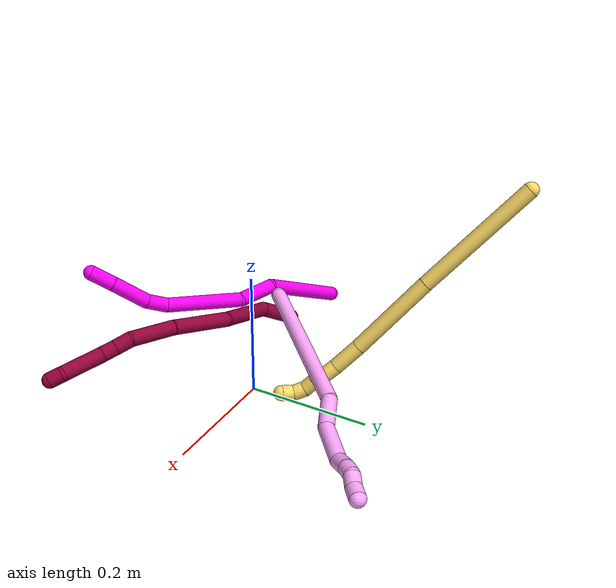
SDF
<sdf version="1.7">
 <world name="default">
  <model name="4">
   <static>0</static>
   <link name="4">
    <collision name="collision-cylinder-e_1_1_4">
     <pose>0.012175 0.077484 0.117169 -0.584275 0.086454 -0.026015</pose>
     <geometry><cylinder><radius>0.0125</radius><length>0.281997</length></cylinder></geometry>
     <surface>
      <friction><ode><mu>1.16</mu><mu2>1.16</mu2><slip1>0</slip1><slip2>0</slip2></ode></friction>
      <contact><ode><kp>1e+06</kp><kd>1</kd><max_vel>0</max_vel><min_depth>0.001</min_depth></ode></contact>
     </surface>
    </collision>
    <visual name="visual-cylinder-e_1_1_4">
     <pose>0.012175 0.077484 0.117169 -0.584275 0.086454 -0.026015</pose>
     <geometry><cylinder><radius>0.0125</radius><length>0.281997</length></cylinder></geometry>
     <material><ambient>1 0.65098 0.996078 1</ambient></material>
    </visual>
    <collision name="collision-cylinder-e_2_4_5">
     <pose>0.018824 0.163188 0.261098 -0.29807 -0.194887 0.029353</pose>
     <geometry><cylinder><radius>0.0125</radius><length>0.057068</length></cylinder></geometry>
     <surface>
      <friction><ode><mu>1.16</mu><mu2>1.16</mu2><slip1>0</slip1><slip2>0</slip2></ode></friction>
      <contact><ode><kp>1e+06</kp><kd>1</kd><max_vel>0</max_vel><min_depth>0.001</min_depth></ode></contact>
     </surface>
    </collision>
    <visual name="visual-cylinder-e_2_4_5">
     <pose>0.018824 0.163188 0.261098 -0.29807 -0.194887 0.029353</pose>
     <geometry><cylinder><radius>0.0125</radius><length>0.057068</length></cylinder></geometry>
     <material><ambient>1 0.65098 0.996078 1</ambient></material>
    </visual>
    <collision name="collision-cylinder-e_3_5_6">
     <pose>0.014566 0.18964 0.317271 -0.554851 0.036622 -0.01043</pose>
     <geometry><cylinder><radius>0.0125</radius><length>0.069256</length></cylinder></geometry>
     <surface>
      <friction><ode><mu>1.16</mu><mu2>1.16</mu2><slip1>0</slip1><slip2>0</slip2></ode></friction>
      <contact><ode><kp>1e+06</kp><kd>1</kd><max_vel>0</max_vel><min_depth>0.001</min_depth></ode></contact>
     </surface>
    </collision>
    <visual name="visual-cylinder-e_3_5_6">
     <pose>0.014566 0.18964 0.317271 -0.554851 0.036622 -0.01043</pose>
     <geometry><cylinder><radius>0.0125</radius><length>0.069256</length></cylinder></geometry>
     <material><ambient>1 0.65098 0.996078 1</ambient></material>
    </visual>
    <collision name="collision-cylinder-e_4_6_7">
     <pose>0.015534 0.218707 0.354358 -0.95465 -0.022546 0.011661</pose>
     <geometry><cylinder><radius>0.0125</radius><length>0.026564</length></cylinder></geometry>
     <surface>
      <friction><ode><mu>1.16</mu><mu2>1.16</mu2><slip1>0</slip1><slip2>0</slip2></ode></friction>
      <contact><ode><kp>1e+06</kp><kd>1</kd><max_vel>0</max_vel><min_depth>0.001</min_depth></ode></contact>
     </surface>
    </collision>
    <visual name="visual-cylinder-e_4_6_7">
     <pose>0.015534 0.218707 0.354358 -0.95465 -0.022546 0.011661</pose>
     <geometry><cylinder><radius>0.0125</radius><length>0.026564</length></cylinder></geometry>
     <material><ambient>1 0.65098 0.996078 1</ambient></material>
    </visual>
    <collision name="collision-cylinder-e_5_7_8">
     <pose>0.014797 0.237549 0.369448 -0.823569 -0.040056 0.017496</pose>
     <geometry><cylinder><radius>0.0125</radius><length>0.021842</length></cylinder></geometry>
     <surface>
      <friction><ode><mu>1.16</mu><mu2>1.16</mu2><slip1>0</slip1><slip2>0</slip2></ode></friction>
      <contact><ode><kp>1e+06</kp><kd>1</kd><max_vel>0</max_vel><min_depth>0.001</min_depth></ode></contact>
     </surface>
    </collision>
    <visual name="visual-cylinder-e_5_7_8">
     <pose>0.014797 0.237549 0.369448 -0.823569 -0.040056 0.017496</pose>
     <geometry><cylinder><radius>0.0125</radius><length>0.021842</length></cylinder></geometry>
     <material><ambient>1 0.65098 0.996078 1</ambient></material>
    </visual>
    <collision name="collision-cylinder-e_6_8_9">
     <pose>0.014487 0.249034 0.386634 -0.34213 0.012281 -0.002122</pose>
     <geometry><cylinder><radius>0.0125</radius><length>0.020745</length></cylinder></geometry>
     <surface>
      <friction><ode><mu>1.16</mu><mu2>1.16</mu2><slip1>0</slip1><slip2>0</slip2></ode></friction>
      <contact><ode><kp>1e+06</kp><kd>1</kd><max_vel>0</max_vel><min_depth>0.001</min_depth></ode></contact>
     </surface>
    </collision>
    <visual name="visual-cylinder-e_6_8_9">
     <pose>0.014487 0.249034 0.386634 -0.34213 0.012281 -0.002122</pose>
     <geometry><cylinder><radius>0.0125</radius><length>0.020745</length></cylinder></geometry>
     <material><ambient>1 0.65098 0.996078 1</ambient></material>
    </visual>
    <collision name="collision-cylinder-e_7_9_2">
     <pose>0.014141 0.258932 0.405648 -0.606974 -0.042121 0.013192</pose>
     <geometry><cylinder><radius>0.0125</radius><length>0.022528</length></cylinder></geometry>
     <surface>
      <friction><ode><mu>1.16</mu><mu2>1.16</mu2><slip1>0</slip1><slip2>0</slip2></ode></friction>
      <contact><ode><kp>1e+06</kp><kd>1</kd><max_vel>0</max_vel><min_depth>0.001</min_depth></ode></contact>
     </surface>
    </collision>
    <visual name="visual-cylinder-e_7_9_2">
     <pose>0.014141 0.258932 0.405648 -0.606974 -0.042121 0.013192</pose>
     <geometry><cylinder><radius>0.0125</radius><length>0.022528</length></cylinder></geometry>
     <material><ambient>1 0.65098 0.996078 1</ambient></material>
    </visual>
    <collision name="collision-sphere-2">
     <pose>0.013666 0.265351 0.414892 0 -0 0</pose>
     <geometry><sphere><radius>0.0125</radius></sphere></geometry>
     <surface>
      <friction><ode><mu>1.16</mu><mu2>1.16</mu2><slip1>0</slip1><slip2>0</slip2></ode></friction>
      <contact><ode><kp>1e+06</kp><kd>1</kd><max_vel>0</max_vel><min_depth>0.001</min_depth></ode></contact>
     </surface>
    </collision>
    <visual name="visual-sphere-2">
     <pose>0.013666 0.265351 0.414892 0 -0 0</pose>
     <geometry><sphere><radius>0.0125</radius></sphere></geometry>
     <material><ambient>1 0.65098 0.996078 1</ambient></material>
    </visual>
    <collision name="collision-sphere-9">
     <pose>0.014615 0.252513 0.396405 0 -0 0</pose>
     <geometry><sphere><radius>0.0125</radius></sphere></geometry>
     <surface>
      <friction><ode><mu>1.16</mu><mu2>1.16</mu2><slip1>0</slip1><slip2>0</slip2></ode></friction>
      <contact><ode><kp>1e+06</kp><kd>1</kd><max_vel>0</max_vel><min_depth>0.001</min_depth></ode></contact>
     </surface>
    </collision>
    <visual name="visual-sphere-9">
     <pose>0.014615 0.252513 0.396405 0 -0 0</pose>
     <geometry><sphere><radius>0.0125</radius></sphere></geometry>
     <material><ambient>1 0.65098 0.996078 1</ambient></material>
    </visual>
    <collision name="collision-sphere-4">
     <pose>0.024349 0.154967 0.234339 0 -0 0</pose>
     <geometry><sphere><radius>0.0125</radius></sphere></geometry>
     <surface>
      <friction><ode><mu>1.16</mu><mu2>1.16</mu2><slip1>0</slip1><slip2>0</slip2></ode></friction>
      <contact><ode><kp>1e+06</kp><kd>1</kd><max_vel>0</max_vel><min_depth>0.001</min_depth></ode></contact>
     </surface>
    </collision>
    <visual name="visual-sphere-4">
     <pose>0.024349 0.154967 0.234339 0 -0 0</pose>
     <geometry><sphere><radius>0.0125</radius></sphere></geometry>
     <material><ambient>1 0.65098 0.996078 1</ambient></material>
    </visual>
    <collision name="collision-sphere-1">
     <geometry><sphere><radius>0.0125</radius></sphere></geometry>
     <surface>
      <friction><ode><mu>1.16</mu><mu2>1.16</mu2><slip1>0</slip1><slip2>0</slip2></ode></friction>
      <contact><ode><kp>1e+06</kp><kd>1</kd><max_vel>0</max_vel><min_depth>0.001</min_depth></ode></contact>
     </surface>
    </collision>
    <visual name="visual-sphere-1">
     <geometry><sphere><radius>0.0125</radius></sphere></geometry>
     <material><ambient>1 0.65098 0.996078 1</ambient></material>
    </visual>
    <collision name="collision-sphere-8">
     <pose>0.01436 0.245554 0.376864 0 -0 0</pose>
     <geometry><sphere><radius>0.0125</radius></sphere></geometry>
     <surface>
      <friction><ode><mu>1.16</mu><mu2>1.16</mu2><slip1>0</slip1><slip2>0</slip2></ode></friction>
      <contact><ode><kp>1e+06</kp><kd>1</kd><max_vel>0</max_vel><min_depth>0.001</min_depth></ode></contact>
     </surface>
    </collision>
    <visual name="visual-sphere-8">
     <pose>0.01436 0.245554 0.376864 0 -0 0</pose>
     <geometry><sphere><radius>0.0125</radius></sphere></geometry>
     <material><ambient>1 0.65098 0.996078 1</ambient></material>
    </visual>
    <collision name="collision-sphere-5">
     <pose>0.013298 0.171409 0.287858 0 -0 0</pose>
     <geometry><sphere><radius>0.0125</radius></sphere></geometry>
     <surface>
      <friction><ode><mu>1.16</mu><mu2>1.16</mu2><slip1>0</slip1><slip2>0</slip2></ode></friction>
      <contact><ode><kp>1e+06</kp><kd>1</kd><max_vel>0</max_vel><min_depth>0.001</min_depth></ode></contact>
     </surface>
    </collision>
    <visual name="visual-sphere-5">
     <pose>0.013298 0.171409 0.287858 0 -0 0</pose>
     <geometry><sphere><radius>0.0125</radius></sphere></geometry>
     <material><ambient>1 0.65098 0.996078 1</ambient></material>
    </visual>
    <collision name="collision-sphere-6">
     <pose>0.015834 0.20787 0.346684 0 -0 0</pose>
     <geometry><sphere><radius>0.0125</radius></sphere></geometry>
     <surface>
      <friction><ode><mu>1.16</mu><mu2>1.16</mu2><slip1>0</slip1><slip2>0</slip2></ode></friction>
      <contact><ode><kp>1e+06</kp><kd>1</kd><max_vel>0</max_vel><min_depth>0.001</min_depth></ode></contact>
     </surface>
    </collision>
    <visual name="visual-sphere-6">
     <pose>0.015834 0.20787 0.346684 0 -0 0</pose>
     <geometry><sphere><radius>0.0125</radius></sphere></geometry>
     <material><ambient>1 0.65098 0.996078 1</ambient></material>
    </visual>
    <collision name="collision-sphere-7">
     <pose>0.015235 0.229544 0.362031 0 -0 0</pose>
     <geometry><sphere><radius>0.0125</radius></sphere></geometry>
     <surface>
      <friction><ode><mu>1.16</mu><mu2>1.16</mu2><slip1>0</slip1><slip2>0</slip2></ode></friction>
      <contact><ode><kp>1e+06</kp><kd>1</kd><max_vel>0</max_vel><min_depth>0.001</min_depth></ode></contact>
     </surface>
    </collision>
    <visual name="visual-sphere-7">
     <pose>0.015235 0.229544 0.362031 0 -0 0</pose>
     <geometry><sphere><radius>0.0125</radius></sphere></geometry>
     <material><ambient>1 0.65098 0.996078 1</ambient></material>
    </visual>
    <inertial>
     <pose>0.013742 0.132589 0.209113 0 -0 0</pose>
     <mass>0.5</mass>
     <inertia>
      <ixx>0.00188</ixx>
      <ixy>0</ixy>
      <ixz>0</ixz>
      <iyy>0.00159</iyy>
      <iyz>0</iyz>
      <izz>-0.001186</izz>
     </inertia>
    </inertial>
   </link>
   <pose>-0.162717 -0.046043 0.083964 2.2372 0.529505 2.33234</pose>
  </model>
  <model name="5">
   <static>0</static>
   <link name="5">
    <collision name="collision-cylinder-e_1_1_4">
     <pose>0.018145 0.022949 -0.098462 -2.91261 0.177583 -1.31757</pose>
     <geometry><cylinder><radius>0.0125</radius><length>0.205434</length></cylinder></geometry>
     <surface>
      <friction><ode><mu>1.16</mu><mu2>1.16</mu2><slip1>0</slip1><slip2>0</slip2></ode></friction>
      <contact><ode><kp>1e+06</kp><kd>1</kd><max_vel>0</max_vel><min_depth>0.001</min_depth></ode></contact>
     </surface>
    </collision>
    <visual name="visual-cylinder-e_1_1_4">
     <pose>0.018145 0.022949 -0.098462 -2.91261 0.177583 -1.31757</pose>
     <geometry><cylinder><radius>0.0125</radius><length>0.205434</length></cylinder></geometry>
     <material><ambient>1 0.858824 0.4 1</ambient></material>
    </visual>
    <collision name="collision-cylinder-e_2_4_5">
     <pose>0.04926 0.06399 -0.265554 -2.88383 0.180747 -1.22043</pose>
     <geometry><cylinder><radius>0.0125</radius><length>0.144299</length></cylinder></geometry>
     <surface>
      <friction><ode><mu>1.16</mu><mu2>1.16</mu2><slip1>0</slip1><slip2>0</slip2></ode></friction>
      <contact><ode><kp>1e+06</kp><kd>1</kd><max_vel>0</max_vel><min_depth>0.001</min_depth></ode></contact>
     </surface>
    </collision>
    <visual name="visual-cylinder-e_2_4_5">
     <pose>0.04926 0.06399 -0.265554 -2.88383 0.180747 -1.22043</pose>
     <geometry><cylinder><radius>0.0125</radius><length>0.144299</length></cylinder></geometry>
     <material><ambient>1 0.858824 0.4 1</ambient></material>
    </visual>
    <collision name="collision-cylinder-e_3_5_6">
     <pose>0.066962 0.086713 -0.357396 -2.94473 0.197327 -1.57319</pose>
     <geometry><cylinder><radius>0.0125</radius><length>0.048277</length></cylinder></geometry>
     <surface>
      <friction><ode><mu>1.16</mu><mu2>1.16</mu2><slip1>0</slip1><slip2>0</slip2></ode></friction>
      <contact><ode><kp>1e+06</kp><kd>1</kd><max_vel>0</max_vel><min_depth>0.001</min_depth></ode></contact>
     </surface>
    </collision>
    <visual name="visual-cylinder-e_3_5_6">
     <pose>0.066962 0.086713 -0.357396 -2.94473 0.197327 -1.57319</pose>
     <geometry><cylinder><radius>0.0125</radius><length>0.048277</length></cylinder></geometry>
     <material><ambient>1 0.858824 0.4 1</ambient></material>
    </visual>
    <collision name="collision-cylinder-e_4_6_7">
     <pose>0.074436 0.092195 -0.390658 -3.05692 0.265422 -2.52705</pose>
     <geometry><cylinder><radius>0.0125</radius><length>0.020902</length></cylinder></geometry>
     <surface>
      <friction><ode><mu>1.16</mu><mu2>1.16</mu2><slip1>0</slip1><slip2>0</slip2></ode></friction>
      <contact><ode><kp>1e+06</kp><kd>1</kd><max_vel>0</max_vel><min_depth>0.001</min_depth></ode></contact>
     </surface>
    </collision>
    <visual name="visual-cylinder-e_4_6_7">
     <pose>0.074436 0.092195 -0.390658 -3.05692 0.265422 -2.52705</pose>
     <geometry><cylinder><radius>0.0125</radius><length>0.020902</length></cylinder></geometry>
     <material><ambient>1 0.858824 0.4 1</ambient></material>
    </visual>
    <collision name="collision-cylinder-e_5_7_8">
     <pose>0.079783 0.092924 -0.410745 3.12921 0.253925 3.04464</pose>
     <geometry><cylinder><radius>0.0125</radius><length>0.020743</length></cylinder></geometry>
     <surface>
      <friction><ode><mu>1.16</mu><mu2>1.16</mu2><slip1>0</slip1><slip2>0</slip2></ode></friction>
      <contact><ode><kp>1e+06</kp><kd>1</kd><max_vel>0</max_vel><min_depth>0.001</min_depth></ode></contact>
     </surface>
    </collision>
    <visual name="visual-cylinder-e_5_7_8">
     <pose>0.079783 0.092924 -0.410745 3.12921 0.253925 3.04464</pose>
     <geometry><cylinder><radius>0.0125</radius><length>0.020743</length></cylinder></geometry>
     <material><ambient>1 0.858824 0.4 1</ambient></material>
    </visual>
    <collision name="collision-cylinder-e_6_8_9">
     <pose>0.083464 0.095031 -0.430564 -2.91723 0.106881 -0.886628</pose>
     <geometry><cylinder><radius>0.0125</radius><length>0.02018</length></cylinder></geometry>
     <surface>
      <friction><ode><mu>1.16</mu><mu2>1.16</mu2><slip1>0</slip1><slip2>0</slip2></ode></friction>
      <contact><ode><kp>1e+06</kp><kd>1</kd><max_vel>0</max_vel><min_depth>0.001</min_depth></ode></contact>
     </surface>
    </collision>
    <visual name="visual-cylinder-e_6_8_9">
     <pose>0.083464 0.095031 -0.430564 -2.91723 0.106881 -0.886628</pose>
     <geometry><cylinder><radius>0.0125</radius><length>0.02018</length></cylinder></geometry>
     <material><ambient>1 0.858824 0.4 1</ambient></material>
    </visual>
    <collision name="collision-cylinder-e_7_9_10">
     <pose>0.086422 0.095155 -0.450002 2.92668 0.188048 1.43676</pose>
     <geometry><cylinder><radius>0.0125</radius><length>0.020124</length></cylinder></geometry>
     <surface>
      <friction><ode><mu>1.16</mu><mu2>1.16</mu2><slip1>0</slip1><slip2>0</slip2></ode></friction>
      <contact><ode><kp>1e+06</kp><kd>1</kd><max_vel>0</max_vel><min_depth>0.001</min_depth></ode></contact>
     </surface>
    </collision>
    <visual name="visual-cylinder-e_7_9_10">
     <pose>0.086422 0.095155 -0.450002 2.92668 0.188048 1.43676</pose>
     <geometry><cylinder><radius>0.0125</radius><length>0.020124</length></cylinder></geometry>
     <material><ambient>1 0.858824 0.4 1</ambient></material>
    </visual>
    <collision name="collision-cylinder-e_8_10_2">
     <pose>0.091013 0.086585 -0.466823 2.40759 0.273842 0.688312</pose>
     <geometry><cylinder><radius>0.0125</radius><length>0.020042</length></cylinder></geometry>
     <surface>
      <friction><ode><mu>1.16</mu><mu2>1.16</mu2><slip1>0</slip1><slip2>0</slip2></ode></friction>
      <contact><ode><kp>1e+06</kp><kd>1</kd><max_vel>0</max_vel><min_depth>0.001</min_depth></ode></contact>
     </surface>
    </collision>
    <visual name="visual-cylinder-e_8_10_2">
     <pose>0.091013 0.086585 -0.466823 2.40759 0.273842 0.688312</pose>
     <geometry><cylinder><radius>0.0125</radius><length>0.020042</length></cylinder></geometry>
     <material><ambient>1 0.858824 0.4 1</ambient></material>
    </visual>
    <collision name="collision-sphere-2">
     <pose>0.093723 0.080122 -0.473986 0 -0 0</pose>
     <geometry><sphere><radius>0.0125</radius></sphere></geometry>
     <surface>
      <friction><ode><mu>1.16</mu><mu2>1.16</mu2><slip1>0</slip1><slip2>0</slip2></ode></friction>
      <contact><ode><kp>1e+06</kp><kd>1</kd><max_vel>0</max_vel><min_depth>0.001</min_depth></ode></contact>
     </surface>
    </collision>
    <visual name="visual-sphere-2">
     <pose>0.093723 0.080122 -0.473986 0 -0 0</pose>
     <geometry><sphere><radius>0.0125</radius></sphere></geometry>
     <material><ambient>1 0.858824 0.4 1</ambient></material>
    </visual>
    <collision name="collision-sphere-10">
     <pose>0.088303 0.093047 -0.459659 0 -0 0</pose>
     <geometry><sphere><radius>0.0125</radius></sphere></geometry>
     <surface>
      <friction><ode><mu>1.16</mu><mu2>1.16</mu2><slip1>0</slip1><slip2>0</slip2></ode></friction>
      <contact><ode><kp>1e+06</kp><kd>1</kd><max_vel>0</max_vel><min_depth>0.001</min_depth></ode></contact>
     </surface>
    </collision>
    <visual name="visual-sphere-10">
     <pose>0.088303 0.093047 -0.459659 0 -0 0</pose>
     <geometry><sphere><radius>0.0125</radius></sphere></geometry>
     <material><ambient>1 0.858824 0.4 1</ambient></material>
    </visual>
    <collision name="collision-sphere-9">
     <pose>0.084541 0.097263 -0.440345 0 -0 0</pose>
     <geometry><sphere><radius>0.0125</radius></sphere></geometry>
     <surface>
      <friction><ode><mu>1.16</mu><mu2>1.16</mu2><slip1>0</slip1><slip2>0</slip2></ode></friction>
      <contact><ode><kp>1e+06</kp><kd>1</kd><max_vel>0</max_vel><min_depth>0.001</min_depth></ode></contact>
     </surface>
    </collision>
    <visual name="visual-sphere-9">
     <pose>0.084541 0.097263 -0.440345 0 -0 0</pose>
     <geometry><sphere><radius>0.0125</radius></sphere></geometry>
     <material><ambient>1 0.858824 0.4 1</ambient></material>
    </visual>
    <collision name="collision-sphere-4">
     <pose>0.03629 0.045898 -0.196925 0 -0 0</pose>
     <geometry><sphere><radius>0.0125</radius></sphere></geometry>
     <surface>
      <friction><ode><mu>1.16</mu><mu2>1.16</mu2><slip1>0</slip1><slip2>0</slip2></ode></friction>
      <contact><ode><kp>1e+06</kp><kd>1</kd><max_vel>0</max_vel><min_depth>0.001</min_depth></ode></contact>
     </surface>
    </collision>
    <visual name="visual-sphere-4">
     <pose>0.03629 0.045898 -0.196925 0 -0 0</pose>
     <geometry><sphere><radius>0.0125</radius></sphere></geometry>
     <material><ambient>1 0.858824 0.4 1</ambient></material>
    </visual>
    <collision name="collision-sphere-1">
     <geometry><sphere><radius>0.0125</radius></sphere></geometry>
     <surface>
      <friction><ode><mu>1.16</mu><mu2>1.16</mu2><slip1>0</slip1><slip2>0</slip2></ode></friction>
      <contact><ode><kp>1e+06</kp><kd>1</kd><max_vel>0</max_vel><min_depth>0.001</min_depth></ode></contact>
     </surface>
    </collision>
    <visual name="visual-sphere-1">
     <geometry><sphere><radius>0.0125</radius></sphere></geometry>
     <material><ambient>1 0.858824 0.4 1</ambient></material>
    </visual>
    <collision name="collision-sphere-8">
     <pose>0.082388 0.092799 -0.420783 0 -0 0</pose>
     <geometry><sphere><radius>0.0125</radius></sphere></geometry>
     <surface>
      <friction><ode><mu>1.16</mu><mu2>1.16</mu2><slip1>0</slip1><slip2>0</slip2></ode></friction>
      <contact><ode><kp>1e+06</kp><kd>1</kd><max_vel>0</max_vel><min_depth>0.001</min_depth></ode></contact>
     </surface>
    </collision>
    <visual name="visual-sphere-8">
     <pose>0.082388 0.092799 -0.420783 0 -0 0</pose>
     <geometry><sphere><radius>0.0125</radius></sphere></geometry>
     <material><ambient>1 0.858824 0.4 1</ambient></material>
    </visual>
    <collision name="collision-sphere-5">
     <pose>0.06223 0.082083 -0.334183 0 -0 0</pose>
     <geometry><sphere><radius>0.0125</radius></sphere></geometry>
     <surface>
      <friction><ode><mu>1.16</mu><mu2>1.16</mu2><slip1>0</slip1><slip2>0</slip2></ode></friction>
      <contact><ode><kp>1e+06</kp><kd>1</kd><max_vel>0</max_vel><min_depth>0.001</min_depth></ode></contact>
     </surface>
    </collision>
    <visual name="visual-sphere-5">
     <pose>0.06223 0.082083 -0.334183 0 -0 0</pose>
     <geometry><sphere><radius>0.0125</radius></sphere></geometry>
     <material><ambient>1 0.858824 0.4 1</ambient></material>
    </visual>
    <collision name="collision-sphere-6">
     <pose>0.071695 0.091342 -0.380609 0 -0 0</pose>
     <geometry><sphere><radius>0.0125</radius></sphere></geometry>
     <surface>
      <friction><ode><mu>1.16</mu><mu2>1.16</mu2><slip1>0</slip1><slip2>0</slip2></ode></friction>
      <contact><ode><kp>1e+06</kp><kd>1</kd><max_vel>0</max_vel><min_depth>0.001</min_depth></ode></contact>
     </surface>
    </collision>
    <visual name="visual-sphere-6">
     <pose>0.071695 0.091342 -0.380609 0 -0 0</pose>
     <geometry><sphere><radius>0.0125</radius></sphere></geometry>
     <material><ambient>1 0.858824 0.4 1</ambient></material>
    </visual>
    <collision name="collision-sphere-7">
     <pose>0.077177 0.093048 -0.400707 0 -0 0</pose>
     <geometry><sphere><radius>0.0125</radius></sphere></geometry>
     <surface>
      <friction><ode><mu>1.16</mu><mu2>1.16</mu2><slip1>0</slip1><slip2>0</slip2></ode></friction>
      <contact><ode><kp>1e+06</kp><kd>1</kd><max_vel>0</max_vel><min_depth>0.001</min_depth></ode></contact>
     </surface>
    </collision>
    <visual name="visual-sphere-7">
     <pose>0.077177 0.093048 -0.400707 0 -0 0</pose>
     <geometry><sphere><radius>0.0125</radius></sphere></geometry>
     <material><ambient>1 0.858824 0.4 1</ambient></material>
    </visual>
    <inertial>
     <pose>0.045054 0.055114 -0.239174 0 -0 0</pose>
     <mass>0.5</mass>
     <inertia>
      <ixx>-0.00067</ixx>
      <ixy>0</ixy>
      <ixz>0</ixz>
      <iyy>-0.001159</iyy>
      <iyz>0</iyz>
      <izz>-0.000445</izz>
     </inertia>
    </inertial>
   </link>
   <pose>-0.210527 0.350295 0.340057 -1.01461 0.083439 0.455786</pose>
  </model>
  <model name="8">
   <static>0</static>
   <link name="8">
    <collision name="collision-cylinder-e_1_1_4">
     <pose>0.028255 0.001457 -0.016308 -3.05248 1.04561 -2.98717</pose>
     <geometry><cylinder><radius>0.0125</radius><length>0.065313</length></cylinder></geometry>
     <surface>
      <friction><ode><mu>1.16</mu><mu2>1.16</mu2><slip1>0</slip1><slip2>0</slip2></ode></friction>
      <contact><ode><kp>1e+06</kp><kd>1</kd><max_vel>0</max_vel><min_depth>0.001</min_depth></ode></contact>
     </surface>
    </collision>
    <visual name="visual-cylinder-e_1_1_4">
     <pose>0.028255 0.001457 -0.016308 -3.05248 1.04561 -2.98717</pose>
     <geometry><cylinder><radius>0.0125</radius><length>0.065313</length></cylinder></geometry>
     <material><ambient>0.584314 0 0.227451 1</ambient></material>
    </visual>
    <collision name="collision-cylinder-e_2_4_5">
     <pose>0.114113 0.000739 -0.034888 2.37794 1.51625 2.33945</pose>
     <geometry><cylinder><radius>0.0125</radius><length>0.115376</length></cylinder></geometry>
     <surface>
      <friction><ode><mu>1.16</mu><mu2>1.16</mu2><slip1>0</slip1><slip2>0</slip2></ode></friction>
      <contact><ode><kp>1e+06</kp><kd>1</kd><max_vel>0</max_vel><min_depth>0.001</min_depth></ode></contact>
     </surface>
    </collision>
    <visual name="visual-cylinder-e_2_4_5">
     <pose>0.114113 0.000739 -0.034888 2.37794 1.51625 2.33945</pose>
     <geometry><cylinder><radius>0.0125</radius><length>0.115376</length></cylinder></geometry>
     <material><ambient>0.584314 0 0.227451 1</ambient></material>
    </visual>
    <collision name="collision-cylinder-e_3_5_6">
     <pose>0.220535 0.011045 -0.049961 -2.36886 1.21975 -2.08711</pose>
     <geometry><cylinder><radius>0.0125</radius><length>0.103982</length></cylinder></geometry>
     <surface>
      <friction><ode><mu>1.16</mu><mu2>1.16</mu2><slip1>0</slip1><slip2>0</slip2></ode></friction>
      <contact><ode><kp>1e+06</kp><kd>1</kd><max_vel>0</max_vel><min_depth>0.001</min_depth></ode></contact>
     </surface>
    </collision>
    <visual name="visual-cylinder-e_3_5_6">
     <pose>0.220535 0.011045 -0.049961 -2.36886 1.21975 -2.08711</pose>
     <geometry><cylinder><radius>0.0125</radius><length>0.103982</length></cylinder></geometry>
     <material><ambient>0.584314 0 0.227451 1</ambient></material>
    </visual>
    <collision name="collision-cylinder-e_4_6_7">
     <pose>0.303227 0.03757 -0.070008 -2.04713 1.13426 -1.61511</pose>
     <geometry><cylinder><radius>0.0125</radius><length>0.074753</length></cylinder></geometry>
     <surface>
      <friction><ode><mu>1.16</mu><mu2>1.16</mu2><slip1>0</slip1><slip2>0</slip2></ode></friction>
      <contact><ode><kp>1e+06</kp><kd>1</kd><max_vel>0</max_vel><min_depth>0.001</min_depth></ode></contact>
     </surface>
    </collision>
    <visual name="visual-cylinder-e_4_6_7">
     <pose>0.303227 0.03757 -0.070008 -2.04713 1.13426 -1.61511</pose>
     <geometry><cylinder><radius>0.0125</radius><length>0.074753</length></cylinder></geometry>
     <material><ambient>0.584314 0 0.227451 1</ambient></material>
    </visual>
    <collision name="collision-cylinder-e_5_7_8">
     <pose>0.347298 0.061033 -0.078013 -1.65116 0.823551 -0.884172</pose>
     <geometry><cylinder><radius>0.0125</radius><length>0.02781</length></cylinder></geometry>
     <surface>
      <friction><ode><mu>1.16</mu><mu2>1.16</mu2><slip1>0</slip1><slip2>0</slip2></ode></friction>
      <contact><ode><kp>1e+06</kp><kd>1</kd><max_vel>0</max_vel><min_depth>0.001</min_depth></ode></contact>
     </surface>
    </collision>
    <visual name="visual-cylinder-e_5_7_8">
     <pose>0.347298 0.061033 -0.078013 -1.65116 0.823551 -0.884172</pose>
     <geometry><cylinder><radius>0.0125</radius><length>0.02781</length></cylinder></geometry>
     <material><ambient>0.584314 0 0.227451 1</ambient></material>
    </visual>
    <collision name="collision-cylinder-e_6_8_9">
     <pose>0.367009 0.077152 -0.079248 -1.64175 0.955975 -1.01515</pose>
     <geometry><cylinder><radius>0.0125</radius><length>0.023285</length></cylinder></geometry>
     <surface>
      <friction><ode><mu>1.16</mu><mu2>1.16</mu2><slip1>0</slip1><slip2>0</slip2></ode></friction>
      <contact><ode><kp>1e+06</kp><kd>1</kd><max_vel>0</max_vel><min_depth>0.001</min_depth></ode></contact>
     </surface>
    </collision>
    <visual name="visual-cylinder-e_6_8_9">
     <pose>0.367009 0.077152 -0.079248 -1.64175 0.955975 -1.01515</pose>
     <geometry><cylinder><radius>0.0125</radius><length>0.023285</length></cylinder></geometry>
     <material><ambient>0.584314 0 0.227451 1</ambient></material>
    </visual>
    <collision name="collision-cylinder-e_7_9_10">
     <pose>0.405751 0.100259 -0.081065 -1.65234 1.05786 -1.13037</pose>
     <geometry><cylinder><radius>0.0125</radius><length>0.067097</length></cylinder></geometry>
     <surface>
      <friction><ode><mu>1.16</mu><mu2>1.16</mu2><slip1>0</slip1><slip2>0</slip2></ode></friction>
      <contact><ode><kp>1e+06</kp><kd>1</kd><max_vel>0</max_vel><min_depth>0.001</min_depth></ode></contact>
     </surface>
    </collision>
    <visual name="visual-cylinder-e_7_9_10">
     <pose>0.405751 0.100259 -0.081065 -1.65234 1.05786 -1.13037</pose>
     <geometry><cylinder><radius>0.0125</radius><length>0.067097</length></cylinder></geometry>
     <material><ambient>0.584314 0 0.227451 1</ambient></material>
    </visual>
    <collision name="collision-cylinder-e_8_10_2">
     <pose>0.440979 0.125969 -0.084072 -1.74809 0.565495 -0.668384</pose>
     <geometry><cylinder><radius>0.0125</radius><length>0.022384</length></cylinder></geometry>
     <surface>
      <friction><ode><mu>1.16</mu><mu2>1.16</mu2><slip1>0</slip1><slip2>0</slip2></ode></friction>
      <contact><ode><kp>1e+06</kp><kd>1</kd><max_vel>0</max_vel><min_depth>0.001</min_depth></ode></contact>
     </surface>
    </collision>
    <visual name="visual-cylinder-e_8_10_2">
     <pose>0.440979 0.125969 -0.084072 -1.74809 0.565495 -0.668384</pose>
     <geometry><cylinder><radius>0.0125</radius><length>0.022384</length></cylinder></geometry>
     <material><ambient>0.584314 0 0.227451 1</ambient></material>
    </visual>
    <collision name="collision-sphere-2">
     <pose>0.446976 0.135271 -0.085739 0 -0 0</pose>
     <geometry><sphere><radius>0.0125</radius></sphere></geometry>
     <surface>
      <friction><ode><mu>1.16</mu><mu2>1.16</mu2><slip1>0</slip1><slip2>0</slip2></ode></friction>
      <contact><ode><kp>1e+06</kp><kd>1</kd><max_vel>0</max_vel><min_depth>0.001</min_depth></ode></contact>
     </surface>
    </collision>
    <visual name="visual-sphere-2">
     <pose>0.446976 0.135271 -0.085739 0 -0 0</pose>
     <geometry><sphere><radius>0.0125</radius></sphere></geometry>
     <material><ambient>0.584314 0 0.227451 1</ambient></material>
    </visual>
    <collision name="collision-sphere-10">
     <pose>0.434982 0.116668 -0.082406 0 -0 0</pose>
     <geometry><sphere><radius>0.0125</radius></sphere></geometry>
     <surface>
      <friction><ode><mu>1.16</mu><mu2>1.16</mu2><slip1>0</slip1><slip2>0</slip2></ode></friction>
      <contact><ode><kp>1e+06</kp><kd>1</kd><max_vel>0</max_vel><min_depth>0.001</min_depth></ode></contact>
     </surface>
    </collision>
    <visual name="visual-sphere-10">
     <pose>0.434982 0.116668 -0.082406 0 -0 0</pose>
     <geometry><sphere><radius>0.0125</radius></sphere></geometry>
     <material><ambient>0.584314 0 0.227451 1</ambient></material>
    </visual>
    <collision name="collision-sphere-9">
     <pose>0.37652 0.08385 -0.079724 0 -0 0</pose>
     <geometry><sphere><radius>0.0125</radius></sphere></geometry>
     <surface>
      <friction><ode><mu>1.16</mu><mu2>1.16</mu2><slip1>0</slip1><slip2>0</slip2></ode></friction>
      <contact><ode><kp>1e+06</kp><kd>1</kd><max_vel>0</max_vel><min_depth>0.001</min_depth></ode></contact>
     </surface>
    </collision>
    <visual name="visual-sphere-9">
     <pose>0.37652 0.08385 -0.079724 0 -0 0</pose>
     <geometry><sphere><radius>0.0125</radius></sphere></geometry>
     <material><ambient>0.584314 0 0.227451 1</ambient></material>
    </visual>
    <collision name="collision-sphere-4">
     <pose>0.056511 0.002914 -0.032616 0 -0 0</pose>
     <geometry><sphere><radius>0.0125</radius></sphere></geometry>
     <surface>
      <friction><ode><mu>1.16</mu><mu2>1.16</mu2><slip1>0</slip1><slip2>0</slip2></ode></friction>
      <contact><ode><kp>1e+06</kp><kd>1</kd><max_vel>0</max_vel><min_depth>0.001</min_depth></ode></contact>
     </surface>
    </collision>
    <visual name="visual-sphere-4">
     <pose>0.056511 0.002914 -0.032616 0 -0 0</pose>
     <geometry><sphere><radius>0.0125</radius></sphere></geometry>
     <material><ambient>0.584314 0 0.227451 1</ambient></material>
    </visual>
    <collision name="collision-sphere-1">
     <geometry><sphere><radius>0.0125</radius></sphere></geometry>
     <surface>
      <friction><ode><mu>1.16</mu><mu2>1.16</mu2><slip1>0</slip1><slip2>0</slip2></ode></friction>
      <contact><ode><kp>1e+06</kp><kd>1</kd><max_vel>0</max_vel><min_depth>0.001</min_depth></ode></contact>
     </surface>
    </collision>
    <visual name="visual-sphere-1">
     <geometry><sphere><radius>0.0125</radius></sphere></geometry>
     <material><ambient>0.584314 0 0.227451 1</ambient></material>
    </visual>
    <collision name="collision-sphere-8">
     <pose>0.357499 0.070453 -0.078772 0 -0 0</pose>
     <geometry><sphere><radius>0.0125</radius></sphere></geometry>
     <surface>
      <friction><ode><mu>1.16</mu><mu2>1.16</mu2><slip1>0</slip1><slip2>0</slip2></ode></friction>
      <contact><ode><kp>1e+06</kp><kd>1</kd><max_vel>0</max_vel><min_depth>0.001</min_depth></ode></contact>
     </surface>
    </collision>
    <visual name="visual-sphere-8">
     <pose>0.357499 0.070453 -0.078772 0 -0 0</pose>
     <geometry><sphere><radius>0.0125</radius></sphere></geometry>
     <material><ambient>0.584314 0 0.227451 1</ambient></material>
    </visual>
    <collision name="collision-sphere-5">
     <pose>0.171715 -0.001436 -0.03716 0 -0 0</pose>
     <geometry><sphere><radius>0.0125</radius></sphere></geometry>
     <surface>
      <friction><ode><mu>1.16</mu><mu2>1.16</mu2><slip1>0</slip1><slip2>0</slip2></ode></friction>
      <contact><ode><kp>1e+06</kp><kd>1</kd><max_vel>0</max_vel><min_depth>0.001</min_depth></ode></contact>
     </surface>
    </collision>
    <visual name="visual-sphere-5">
     <pose>0.171715 -0.001436 -0.03716 0 -0 0</pose>
     <geometry><sphere><radius>0.0125</radius></sphere></geometry>
     <material><ambient>0.584314 0 0.227451 1</ambient></material>
    </visual>
    <collision name="collision-sphere-6">
     <pose>0.269355 0.023526 -0.062762 0 -0 0</pose>
     <geometry><sphere><radius>0.0125</radius></sphere></geometry>
     <surface>
      <friction><ode><mu>1.16</mu><mu2>1.16</mu2><slip1>0</slip1><slip2>0</slip2></ode></friction>
      <contact><ode><kp>1e+06</kp><kd>1</kd><max_vel>0</max_vel><min_depth>0.001</min_depth></ode></contact>
     </surface>
    </collision>
    <visual name="visual-sphere-6">
     <pose>0.269355 0.023526 -0.062762 0 -0 0</pose>
     <geometry><sphere><radius>0.0125</radius></sphere></geometry>
     <material><ambient>0.584314 0 0.227451 1</ambient></material>
    </visual>
    <collision name="collision-sphere-7">
     <pose>0.337098 0.051614 -0.077255 0 -0 0</pose>
     <geometry><sphere><radius>0.0125</radius></sphere></geometry>
     <surface>
      <friction><ode><mu>1.16</mu><mu2>1.16</mu2><slip1>0</slip1><slip2>0</slip2></ode></friction>
      <contact><ode><kp>1e+06</kp><kd>1</kd><max_vel>0</max_vel><min_depth>0.001</min_depth></ode></contact>
     </surface>
    </collision>
    <visual name="visual-sphere-7">
     <pose>0.337098 0.051614 -0.077255 0 -0 0</pose>
     <geometry><sphere><radius>0.0125</radius></sphere></geometry>
     <material><ambient>0.584314 0 0.227451 1</ambient></material>
    </visual>
    <inertial>
     <pose>0.23182 0.034356 -0.053709 0 -0 0</pose>
     <mass>0.5</mass>
     <inertia>
      <ixx>-4.9e-05</ixx>
      <ixy>0</ixy>
      <ixz>0</ixz>
      <iyy>0.000256</iyy>
      <iyz>0</iyz>
      <izz>-0.000368</izz>
     </inertia>
    </inertial>
   </link>
   <pose>-0.217337 -0.051977 0.012622 -2.28375 -0.231129 -0.044249</pose>
  </model>
  <model name="10">
   <static>0</static>
   <link name="10">
    <collision name="collision-cylinder-e_1_1_4">
     <pose>0.034126 0.007612 0.074032 -0.102456 0.429938 -0.022389</pose>
     <geometry><cylinder><radius>0.0125</radius><length>0.163748</length></cylinder></geometry>
     <surface>
      <friction><ode><mu>1.16</mu><mu2>1.16</mu2><slip1>0</slip1><slip2>0</slip2></ode></friction>
      <contact><ode><kp>1e+06</kp><kd>1</kd><max_vel>0</max_vel><min_depth>0.001</min_depth></ode></contact>
     </surface>
    </collision>
    <visual name="visual-cylinder-e_1_1_4">
     <pose>0.034126 0.007612 0.074032 -0.102456 0.429938 -0.022389</pose>
     <geometry><cylinder><radius>0.0125</radius><length>0.163748</length></cylinder></geometry>
     <material><ambient>1 0 0.964706 1</ambient></material>
    </visual>
    <collision name="collision-cylinder-e_2_4_5">
     <pose>0.088526 0.004779 0.171353 0.421593 0.671266 0.149006</pose>
     <geometry><cylinder><radius>0.0125</radius><length>0.065191</length></cylinder></geometry>
     <surface>
      <friction><ode><mu>1.16</mu><mu2>1.16</mu2><slip1>0</slip1><slip2>0</slip2></ode></friction>
      <contact><ode><kp>1e+06</kp><kd>1</kd><max_vel>0</max_vel><min_depth>0.001</min_depth></ode></contact>
     </surface>
    </collision>
    <visual name="visual-cylinder-e_2_4_5">
     <pose>0.088526 0.004779 0.171353 0.421593 0.671266 0.149006</pose>
     <geometry><cylinder><radius>0.0125</radius><length>0.065191</length></cylinder></geometry>
     <material><ambient>1 0 0.964706 1</ambient></material>
    </visual>
    <collision name="collision-cylinder-e_3_5_6">
     <pose>0.121854 -0.036951 0.249206 0.520607 0.204636 0.054682</pose>
     <geometry><cylinder><radius>0.0125</radius><length>0.128474</length></cylinder></geometry>
     <surface>
      <friction><ode><mu>1.16</mu><mu2>1.16</mu2><slip1>0</slip1><slip2>0</slip2></ode></friction>
      <contact><ode><kp>1e+06</kp><kd>1</kd><max_vel>0</max_vel><min_depth>0.001</min_depth></ode></contact>
     </surface>
    </collision>
    <visual name="visual-cylinder-e_3_5_6">
     <pose>0.121854 -0.036951 0.249206 0.520607 0.204636 0.054682</pose>
     <geometry><cylinder><radius>0.0125</radius><length>0.128474</length></cylinder></geometry>
     <material><ambient>1 0 0.964706 1</ambient></material>
    </visual>
    <collision name="collision-cylinder-e_4_6_7">
     <pose>0.138663 -0.069851 0.322231 0.087245 0.199964 0.008758</pose>
     <geometry><cylinder><radius>0.0125</radius><length>0.037816</length></cylinder></geometry>
     <surface>
      <friction><ode><mu>1.16</mu><mu2>1.16</mu2><slip1>0</slip1><slip2>0</slip2></ode></friction>
      <contact><ode><kp>1e+06</kp><kd>1</kd><max_vel>0</max_vel><min_depth>0.001</min_depth></ode></contact>
     </surface>
    </collision>
    <visual name="visual-cylinder-e_4_6_7">
     <pose>0.138663 -0.069851 0.322231 0.087245 0.199964 0.008758</pose>
     <geometry><cylinder><radius>0.0125</radius><length>0.037816</length></cylinder></geometry>
     <material><ambient>1 0 0.964706 1</ambient></material>
    </visual>
    <collision name="collision-cylinder-e_5_7_8">
     <pose>0.140391 -0.070898 0.372957 -0.017613 -0.062772 0.000553</pose>
     <geometry><cylinder><radius>0.0125</radius><length>0.064668</length></cylinder></geometry>
     <surface>
      <friction><ode><mu>1.16</mu><mu2>1.16</mu2><slip1>0</slip1><slip2>0</slip2></ode></friction>
      <contact><ode><kp>1e+06</kp><kd>1</kd><max_vel>0</max_vel><min_depth>0.001</min_depth></ode></contact>
     </surface>
    </collision>
    <visual name="visual-cylinder-e_5_7_8">
     <pose>0.140391 -0.070898 0.372957 -0.017613 -0.062772 0.000553</pose>
     <geometry><cylinder><radius>0.0125</radius><length>0.064668</length></cylinder></geometry>
     <material><ambient>1 0 0.964706 1</ambient></material>
    </visual>
    <collision name="collision-cylinder-e_6_8_2">
     <pose>0.135049 -0.072721 0.424853 0.121233 -0.166007 -0.010098</pose>
     <geometry><cylinder><radius>0.0125</radius><length>0.040103</length></cylinder></geometry>
     <surface>
      <friction><ode><mu>1.16</mu><mu2>1.16</mu2><slip1>0</slip1><slip2>0</slip2></ode></friction>
      <contact><ode><kp>1e+06</kp><kd>1</kd><max_vel>0</max_vel><min_depth>0.001</min_depth></ode></contact>
     </surface>
    </collision>
    <visual name="visual-cylinder-e_6_8_2">
     <pose>0.135049 -0.072721 0.424853 0.121233 -0.166007 -0.010098</pose>
     <geometry><cylinder><radius>0.0125</radius><length>0.040103</length></cylinder></geometry>
     <material><ambient>1 0 0.964706 1</ambient></material>
    </visual>
    <collision name="collision-sphere-2">
     <pose>0.131736 -0.075112 0.444483 0 -0 0</pose>
     <geometry><sphere><radius>0.0125</radius></sphere></geometry>
     <surface>
      <friction><ode><mu>1.16</mu><mu2>1.16</mu2><slip1>0</slip1><slip2>0</slip2></ode></friction>
      <contact><ode><kp>1e+06</kp><kd>1</kd><max_vel>0</max_vel><min_depth>0.001</min_depth></ode></contact>
     </surface>
    </collision>
    <visual name="visual-sphere-2">
     <pose>0.131736 -0.075112 0.444483 0 -0 0</pose>
     <geometry><sphere><radius>0.0125</radius></sphere></geometry>
     <material><ambient>1 0 0.964706 1</ambient></material>
    </visual>
    <collision name="collision-sphere-4">
     <pose>0.068253 0.015223 0.148065 0 -0 0</pose>
     <geometry><sphere><radius>0.0125</radius></sphere></geometry>
     <surface>
      <friction><ode><mu>1.16</mu><mu2>1.16</mu2><slip1>0</slip1><slip2>0</slip2></ode></friction>
      <contact><ode><kp>1e+06</kp><kd>1</kd><max_vel>0</max_vel><min_depth>0.001</min_depth></ode></contact>
     </surface>
    </collision>
    <visual name="visual-sphere-4">
     <pose>0.068253 0.015223 0.148065 0 -0 0</pose>
     <geometry><sphere><radius>0.0125</radius></sphere></geometry>
     <material><ambient>1 0 0.964706 1</ambient></material>
    </visual>
    <collision name="collision-sphere-1">
     <geometry><sphere><radius>0.0125</radius></sphere></geometry>
     <surface>
      <friction><ode><mu>1.16</mu><mu2>1.16</mu2><slip1>0</slip1><slip2>0</slip2></ode></friction>
      <contact><ode><kp>1e+06</kp><kd>1</kd><max_vel>0</max_vel><min_depth>0.001</min_depth></ode></contact>
     </surface>
    </collision>
    <visual name="visual-sphere-1">
     <geometry><sphere><radius>0.0125</radius></sphere></geometry>
     <material><ambient>1 0 0.964706 1</ambient></material>
    </visual>
    <collision name="collision-sphere-8">
     <pose>0.138362 -0.070329 0.405222 0 -0 0</pose>
     <geometry><sphere><radius>0.0125</radius></sphere></geometry>
     <surface>
      <friction><ode><mu>1.16</mu><mu2>1.16</mu2><slip1>0</slip1><slip2>0</slip2></ode></friction>
      <contact><ode><kp>1e+06</kp><kd>1</kd><max_vel>0</max_vel><min_depth>0.001</min_depth></ode></contact>
     </surface>
    </collision>
    <visual name="visual-sphere-8">
     <pose>0.138362 -0.070329 0.405222 0 -0 0</pose>
     <geometry><sphere><radius>0.0125</radius></sphere></geometry>
     <material><ambient>1 0 0.964706 1</ambient></material>
    </visual>
    <collision name="collision-sphere-5">
     <pose>0.1088 -0.005666 0.194642 0 -0 0</pose>
     <geometry><sphere><radius>0.0125</radius></sphere></geometry>
     <surface>
      <friction><ode><mu>1.16</mu><mu2>1.16</mu2><slip1>0</slip1><slip2>0</slip2></ode></friction>
      <contact><ode><kp>1e+06</kp><kd>1</kd><max_vel>0</max_vel><min_depth>0.001</min_depth></ode></contact>
     </surface>
    </collision>
    <visual name="visual-sphere-5">
     <pose>0.1088 -0.005666 0.194642 0 -0 0</pose>
     <geometry><sphere><radius>0.0125</radius></sphere></geometry>
     <material><ambient>1 0 0.964706 1</ambient></material>
    </visual>
    <collision name="collision-sphere-6">
     <pose>0.134908 -0.068236 0.30377 0 -0 0</pose>
     <geometry><sphere><radius>0.0125</radius></sphere></geometry>
     <surface>
      <friction><ode><mu>1.16</mu><mu2>1.16</mu2><slip1>0</slip1><slip2>0</slip2></ode></friction>
      <contact><ode><kp>1e+06</kp><kd>1</kd><max_vel>0</max_vel><min_depth>0.001</min_depth></ode></contact>
     </surface>
    </collision>
    <visual name="visual-sphere-6">
     <pose>0.134908 -0.068236 0.30377 0 -0 0</pose>
     <geometry><sphere><radius>0.0125</radius></sphere></geometry>
     <material><ambient>1 0 0.964706 1</ambient></material>
    </visual>
    <collision name="collision-sphere-7">
     <pose>0.142419 -0.071466 0.340692 0 -0 0</pose>
     <geometry><sphere><radius>0.0125</radius></sphere></geometry>
     <surface>
      <friction><ode><mu>1.16</mu><mu2>1.16</mu2><slip1>0</slip1><slip2>0</slip2></ode></friction>
      <contact><ode><kp>1e+06</kp><kd>1</kd><max_vel>0</max_vel><min_depth>0.001</min_depth></ode></contact>
     </surface>
    </collision>
    <visual name="visual-sphere-7">
     <pose>0.142419 -0.071466 0.340692 0 -0 0</pose>
     <geometry><sphere><radius>0.0125</radius></sphere></geometry>
     <material><ambient>1 0 0.964706 1</ambient></material>
    </visual>
    <inertial>
     <pose>0.093505 -0.026664 0.217303 0 -0 0</pose>
     <mass>0.5</mass>
     <inertia>
      <ixx>0.000589</ixx>
      <ixy>0</ixy>
      <ixz>0</ixz>
      <iyy>0.00059</iyy>
      <iyz>0</iyz>
      <izz>-0.000109</izz>
     </inertia>
    </inertial>
   </link>
   <pose>-0.331193 -0.029438 0.012411 0.932514 0.379303 0.49756</pose>
  </model>
 </world>
</sdf>
